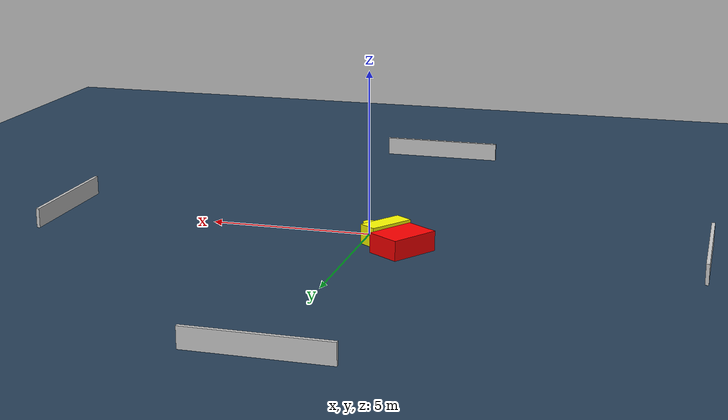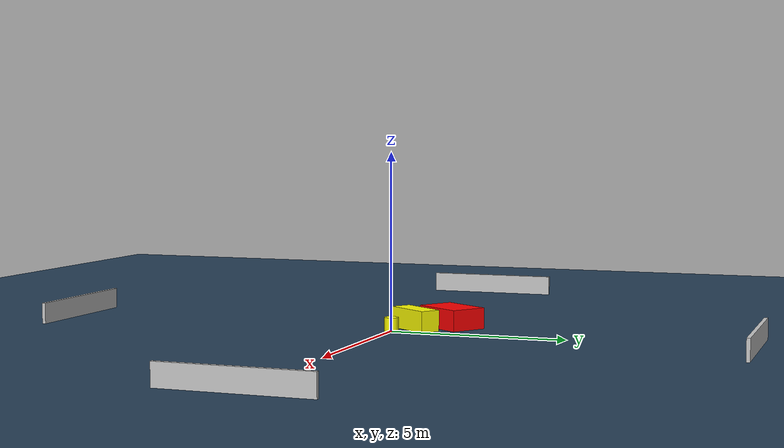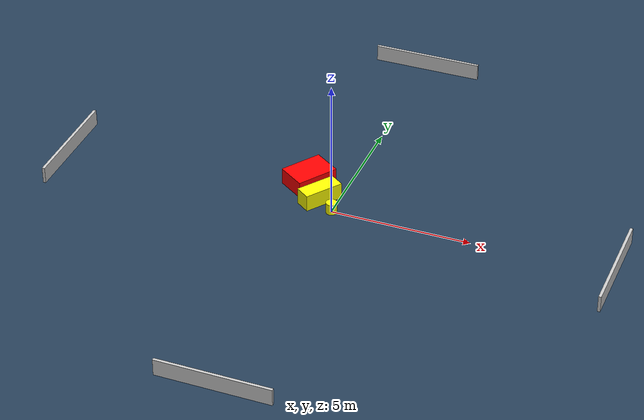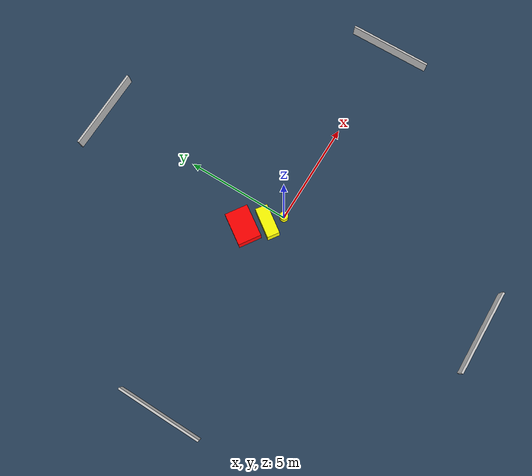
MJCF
<?xml version="1.0" ?>
<mujoco model="generated_environment">
  <option timestep="0.01" integrator="RK4" cone="elliptic"/>
  <default>
    <geom density="1"/>
  </default>
  <asset>
    <texture builtin="gradient" height="3072" name="skybox" rgb1="0.3 0.5 0.7" rgb2="0 0 0" type="skybox" width="512"/>
    <texture builtin="checker" height="300" name="groundplane" rgb1="0.2 0.3 0.4" rgb2="0.1 0.2 0.3" type="2d" width="300"/>
    <material name="groundplane" reflectance="0.2" texrepeat="5 5" texture="groundplane"/>
  </asset>
  <worldbody>
    <light dir="0 0 -1" directional="true" pos="0 0 1.5"/>
    <geom condim="3" friction="0.5 0.005 0.001" material="groundplane" name="floor" pos="0 0 0" size="0 0 0.05" type="plane"/>
    <body name="walls">
      <geom name="wall_1" condim="4" pos="-10.0 0.0 0.3" rgba="0.800000011920929 0.800000011920929 0.800000011920929 1.0" size="0.05 2.0 0.3" type="box"/>
      <geom name="wall_2" condim="4" pos="10.0 0.0 0.3" rgba="0.800000011920929 0.800000011920929 0.800000011920929 1.0" size="0.05 2.0 0.3" type="box"/>
      <geom name="wall_3" condim="4" pos="0.0 -10.0 0.3" rgba="0.800000011920929 0.800000011920929 0.800000011920929 1.0" size="2.0 0.05 0.3" type="box"/>
      <geom name="wall_4" condim="4" pos="0.0 10.0 0.3" rgba="0.800000011920929 0.800000011920929 0.800000011920929 1.0" size="2.0 0.05 0.3" type="box"/>
    </body>
    <body name="robot">
      <joint name="joint_x" type="slide" pos="0 0 0" axis="1 0 0"/>
      <joint name="joint_y" type="slide" pos="0 0 0" axis="0 1 0"/>
      <geom name="robot" type="cylinder" pos="0.0 0.0 0.2" size="0.2 0.2 0.0" mass="5.0" friction="1.0 0.005 0.0001" condim="4" rgba="1.0 1.0 0.0 1.0"/>
    </body>
    <body name="obstacle_1_movable">
      <geom name="obstacle_1_movable" condim="4" pos="-0.6302249904358493 0.4908474207749302 0.3" euler="0 0 324.6659101104373" friction="0.0 0.005 0.001" rgba="1.0 1.0 0.0 1.0" size="0.29343689191848543 0.715851147946531 0.3" type="box" mass="0.1"/>
      <joint type="free"/>
    </body>
    <body name="obstacle_2_static">
      <geom name="obstacle_2_static" condim="4" pos="-1.3553434692221924 1.3330261618887354 0.3" euler="0 0 236.00453107428942" friction="0.0 0.005 0.001" rgba="1.0 0.0 0.0 1.0" size="0.7750745801357894 0.5465021194234396 0.3" type="box"/>
    </body>
  </worldbody>
  <actuator>
    <motor name="actuator_x" joint="joint_x" gear="1" ctrlrange="-1 1"/>
    <motor name="actuator_y" joint="joint_y" gear="1" ctrlrange="-1 1"/>
  </actuator>
</mujoco>
